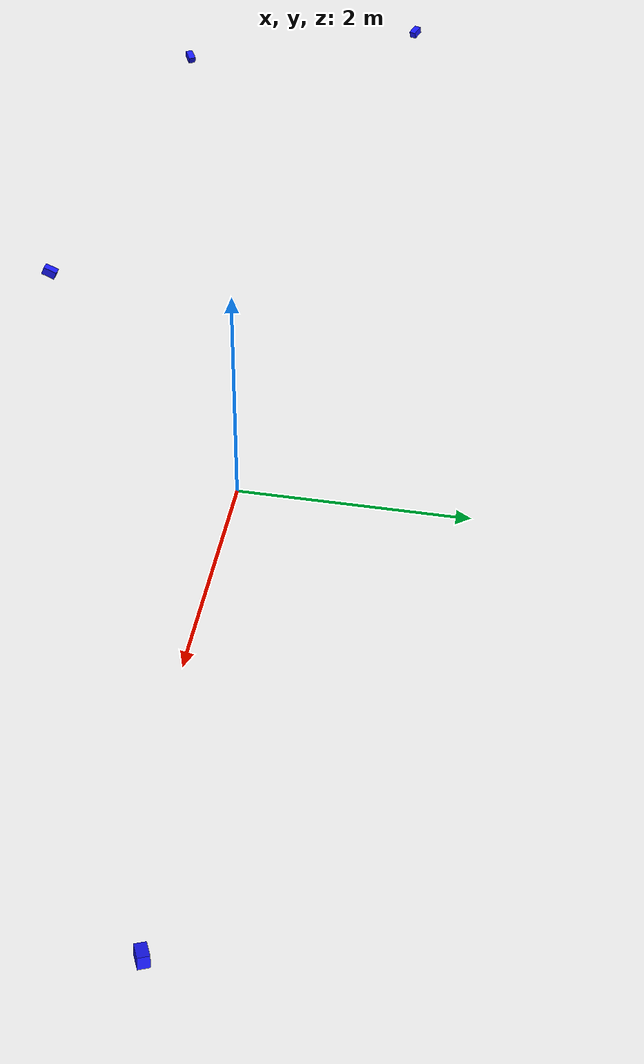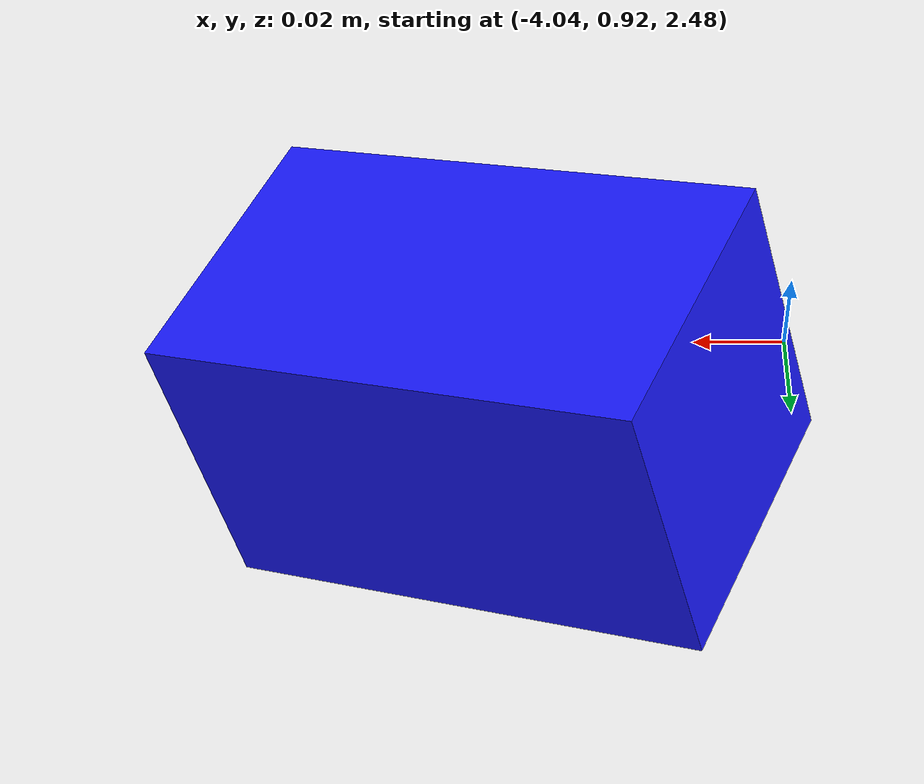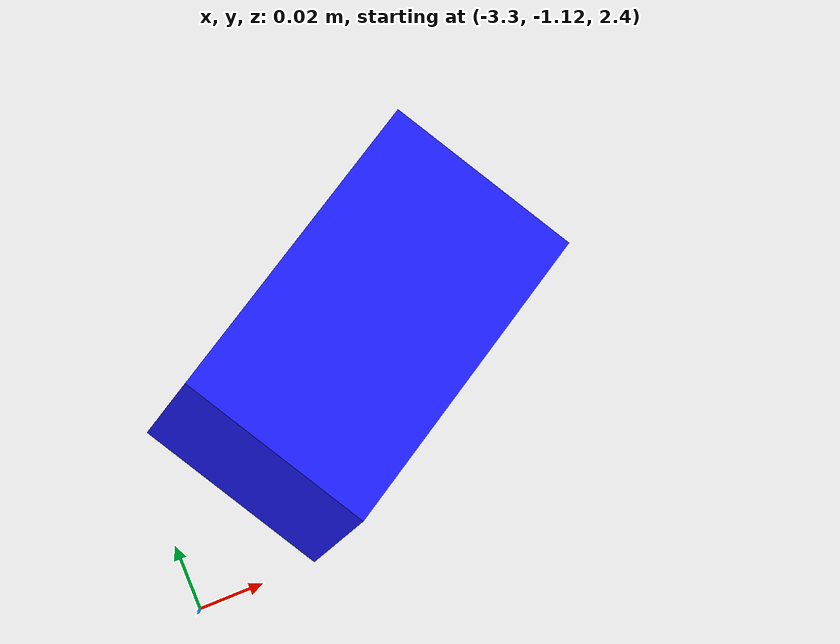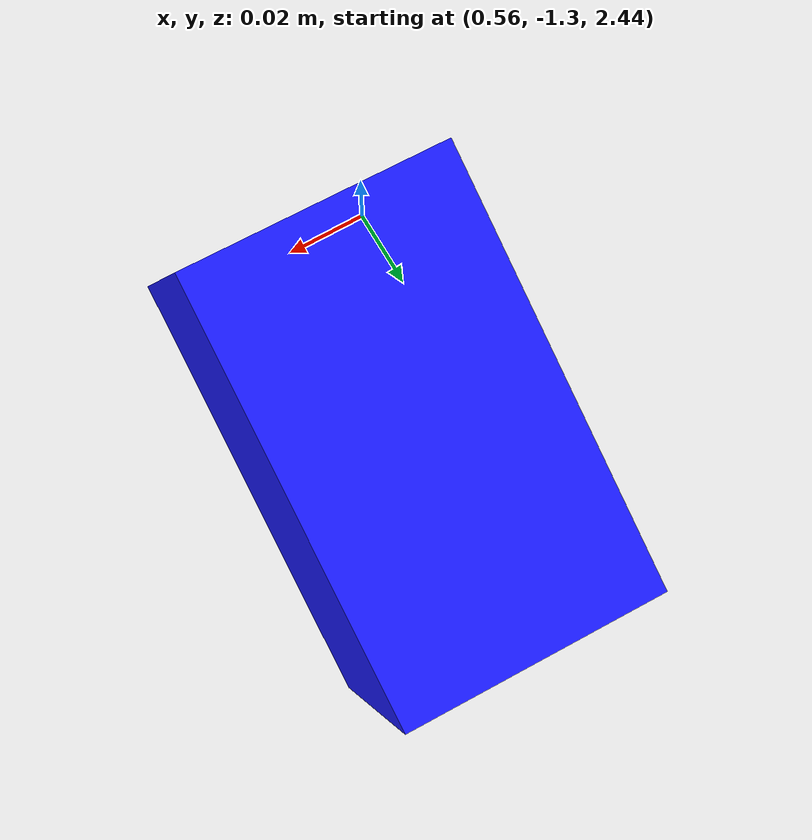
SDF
<sdf version="1.9">
 <world name="bus_real_data_camera_layout">
  <plugin filename="ignition-gazebo-physics-system" name="ignition::gazebo::systems::Physics"/>
  <plugin filename="ignition-gazebo-user-commands-system" name="ignition::gazebo::systems::UserCommands"/>
  <plugin filename="ignition-gazebo-scene-broadcaster-system" name="ignition::gazebo::systems::SceneBroadcaster"/>
  <plugin filename="ignition-gazebo-sensors-system" name="ignition::gazebo::systems::Sensors">
   <render_engine>ogre2</render_engine>
  </plugin>
  <physics name="default_physics" type="ignored">
   <max_step_size>0.01</max_step_size>
   <real_time_factor>1.0</real_time_factor>
  </physics>
  <scene><ambient>0.7 0.7 0.7 1</ambient><background>0.8 0.8 0.8 1</background></scene>
  <light name="sun" type="directional">
   <pose>0 0 10 0 0 0</pose>
   <diffuse>0.8 0.8 0.8 1</diffuse>
   <specular>0.2 0.2 0.2 1</specular>
   <direction>-0.5 0.1 -0.9</direction>
  </light>
  <model name="cam_edge_0">
   <static>true</static>
   <pose>0.58780793 -1.23455526 2.48732830 -0.02832886 0.39717862 1.54540010</pose>
   <link name="cam_edge_0_link">
    <visual name="cam_edge_0_visual">
     <geometry><box><size>0.10 0.06 0.06</size></box></geometry>
     <material><ambient>0.1 0.1 1.0 1</ambient><diffuse>0.1 0.1 1.0 1</diffuse></material>
    </visual>
    <sensor name="cam_edge_0_sensor" type="camera">
     <always_on>true</always_on>
     <update_rate>15</update_rate>
     <topic>/bus_real_data/cam_edge_0/image</topic>
     <camera>
      <horizontal_fov>1.2064567910</horizontal_fov>
      <image><width>1280</width><height>720</height><format>R8G8B8</format></image>
      <clip><near>0.05</near><far>100.0</far></clip>
     </camera>
    </sensor>
   </link>
  </model>
  <model name="cam_edge_1">
   <static>true</static>
   <pose>-3.97416732 0.97508650 2.53154268 0.01397153 0.28558128 -0.42471064</pose>
   <link name="cam_edge_1_link">
    <visual name="cam_edge_1_visual">
     <geometry><box><size>0.10 0.06 0.06</size></box></geometry>
     <material><ambient>0.1 0.1 1.0 1</ambient><diffuse>0.1 0.1 1.0 1</diffuse></material>
    </visual>
    <sensor name="cam_edge_1_sensor" type="camera">
     <always_on>true</always_on>
     <update_rate>15</update_rate>
     <topic>/bus_real_data/cam_edge_1/image</topic>
     <camera>
      <horizontal_fov>1.2058954091</horizontal_fov>
      <image><width>1280</width><height>720</height><format>R8G8B8</format></image>
      <clip><near>0.05</near><far>100.0</far></clip>
     </camera>
    </sensor>
   </link>
  </model>
  <model name="cam_edge_3">
   <static>true</static>
   <pose>-3.22735583 -1.06321426 2.45421090 0.03640120 0.33821970 0.53742790</pose>
   <link name="cam_edge_3_link">
    <visual name="cam_edge_3_visual">
     <geometry><box><size>0.10 0.06 0.06</size></box></geometry>
     <material><ambient>0.1 0.1 1.0 1</ambient><diffuse>0.1 0.1 1.0 1</diffuse></material>
    </visual>
    <sensor name="cam_edge_3_sensor" type="camera">
     <always_on>true</always_on>
     <update_rate>15</update_rate>
     <topic>/bus_real_data/cam_edge_3/image</topic>
     <camera>
      <horizontal_fov>1.2156537552</horizontal_fov>
      <image><width>1280</width><height>720</height><format>R8G8B8</format></image>
      <clip><near>0.05</near><far>100.0</far></clip>
     </camera>
    </sensor>
   </link>
  </model>
  <model name="cam_edge_5">
   <static>true</static>
   <pose>5.85885887 0.84841954 2.53876157 0.07529451 0.33545337 -2.70003495</pose>
   <link name="cam_edge_5_link">
    <visual name="cam_edge_5_visual">
     <geometry><box><size>0.10 0.06 0.06</size></box></geometry>
     <material><ambient>0.1 0.1 1.0 1</ambient><diffuse>0.1 0.1 1.0 1</diffuse></material>
    </visual>
    <sensor name="cam_edge_5_sensor" type="camera">
     <always_on>true</always_on>
     <update_rate>15</update_rate>
     <topic>/bus_real_data/cam_edge_5/image</topic>
     <camera>
      <horizontal_fov>1.2083025268</horizontal_fov>
      <image><width>1280</width><height>720</height><format>R8G8B8</format></image>
      <clip><near>0.05</near><far>100.0</far></clip>
     </camera>
    </sensor>
   </link>
  </model>
 </world>
</sdf>
